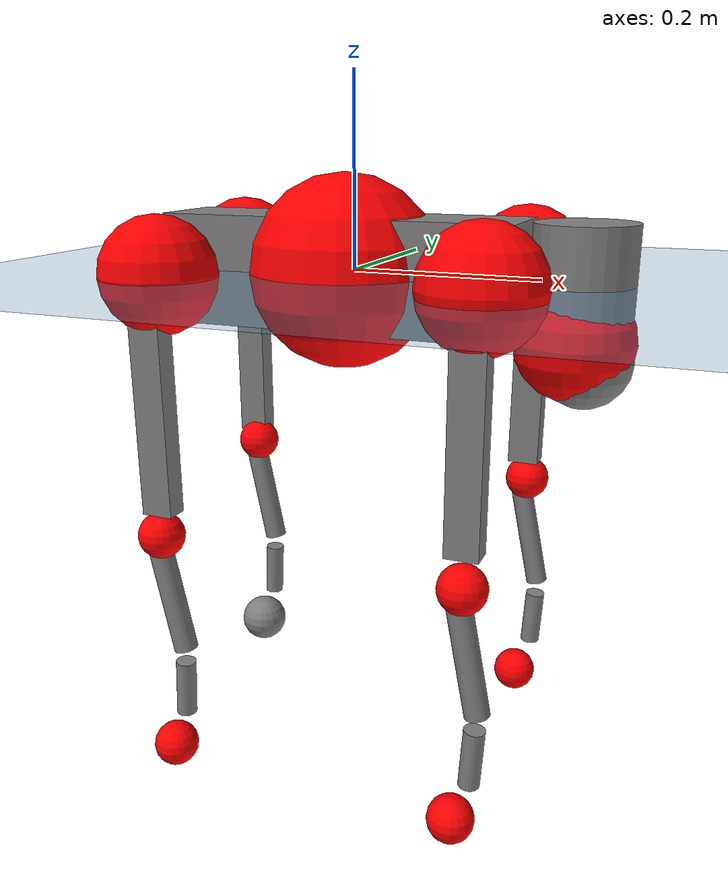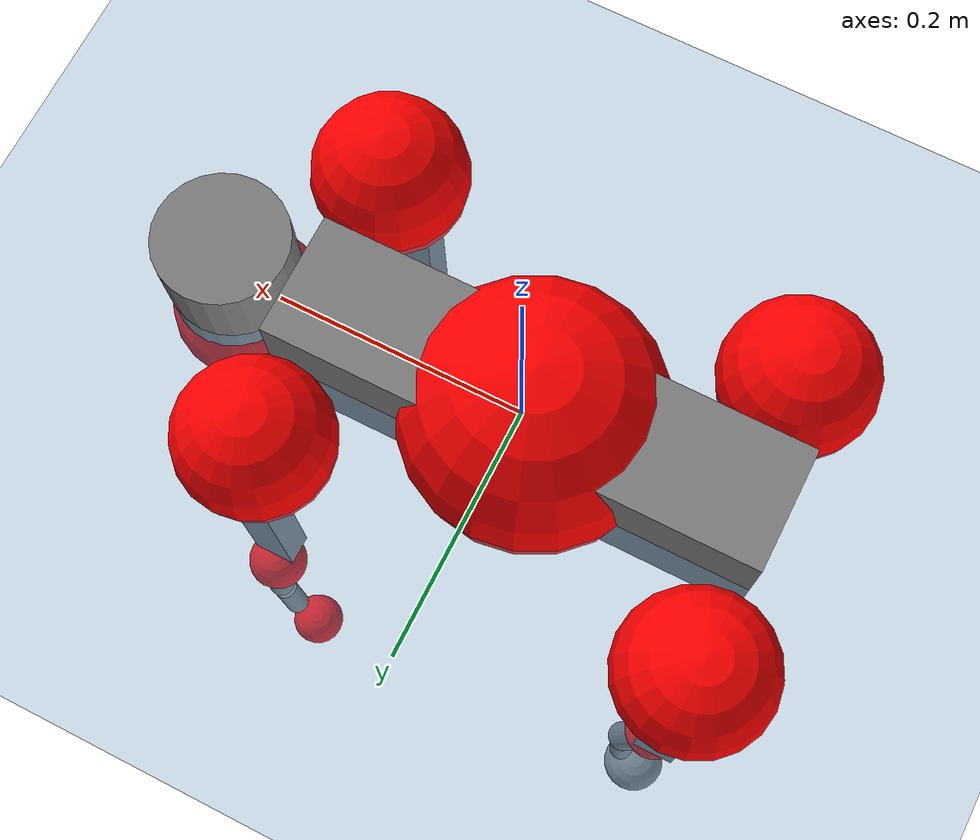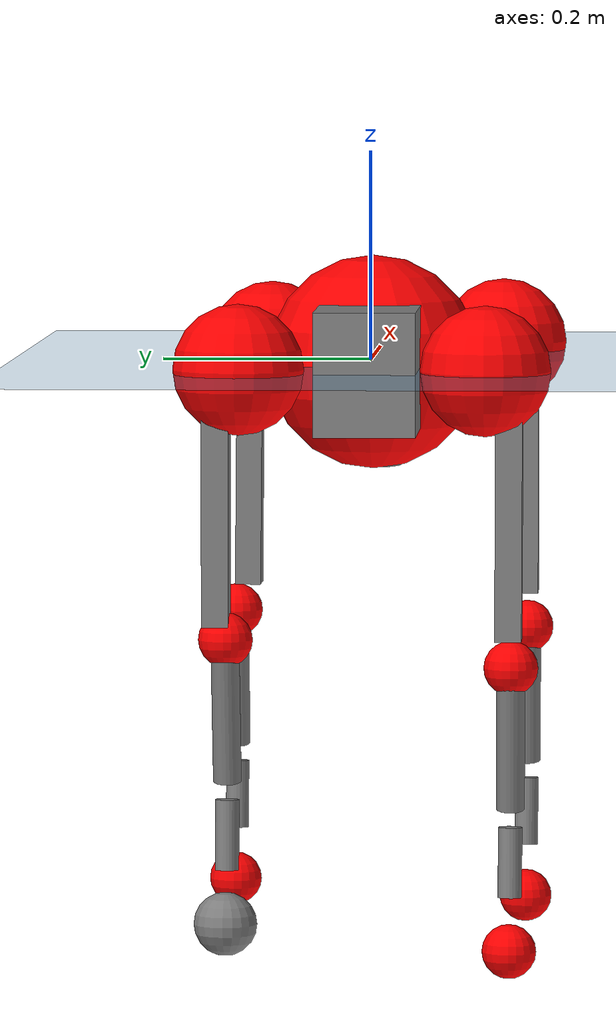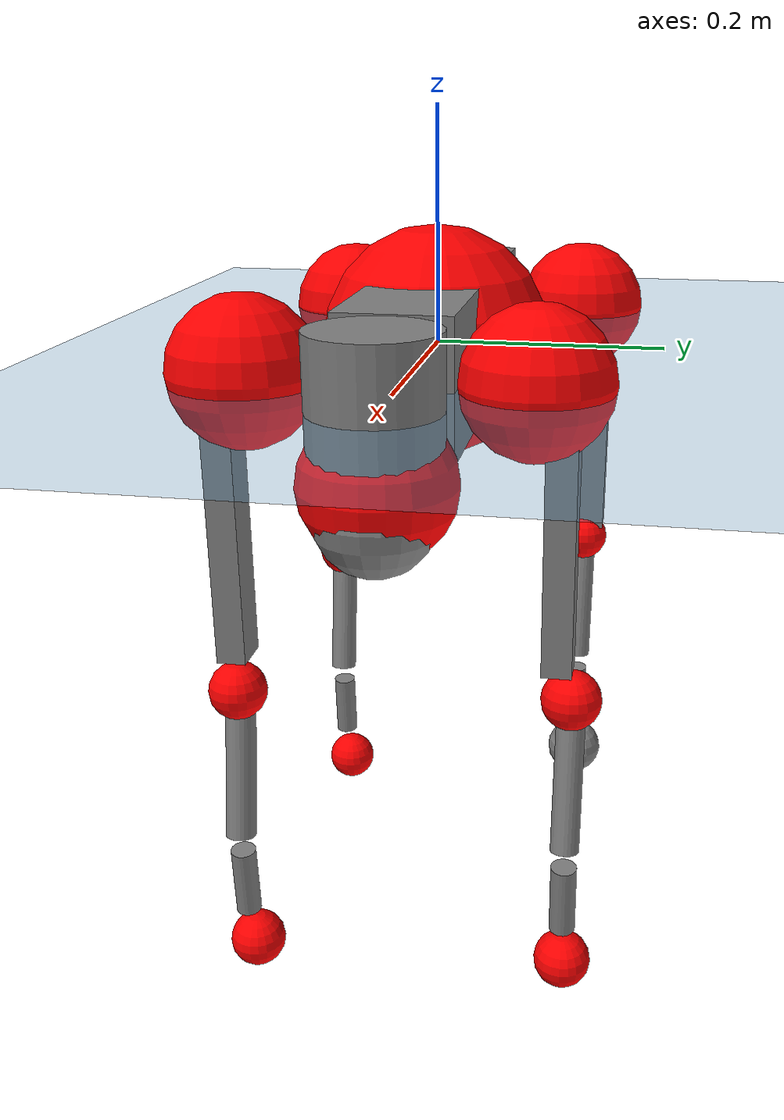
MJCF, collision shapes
<mujoco model="go2">
  <compiler angle="radian" assetdir="assets" balanceinertia="true" inertiafromgeom="false"/>

  <option timestep="0.005" density="1.2" viscosity="2e-05"/>

  <size nkey="1"/>

  <visual>
    <quality shadowsize="8192"/>
    <map shadowclip="0.5"/>
  </visual>

  <default>
    <default class="/">
      <geom contype="0" conaffinity="0" group="1" solref="-1000 -80"/>
      <site size="0.01 0.005 0.005" group="5"/>
      <general forcelimited="true" biastype="affine" gainprm="20" biasprm="0 -20 -0.5"/>
      <default class="go2">
        <joint armature="0.01" damping="0.01" frictionloss="0.2"/>
        <geom condim="1" margin="0.001"/>
        <default class="visual">
          <geom type="mesh" group="2"/>
        </default>
        <default class="collision">
          <geom group="3"/>
          <default class="foot">
            <geom size="0.022 0 0" condim="6" priority="1" friction="0.8 0.02 0.01" solimp="0.015 1 0.022"/>
          </default>
        </default>
        <default class="reward_collision_sphere">
          <geom group="5" rgba="1 0 0 1"/>
        </default>
      </default>
    </default>
  </default>

  <asset>
    <texture type="skybox" colorspace="auto" name="//unnamed_texture_0" builtin="gradient" rgb1="0.95 0.95 0.95" rgb2="0.95 0.95 0.95" width="100" height="600"/>
    <texture type="2d" colorspace="auto" name="texplane" builtin="checker" rgb1="0.345 0.575 0.748" rgb2="0.345 0.575 0.748" markrgb="1 1 1" width="512" height="512"/>
    <material name="MatPlane" class="/" texture="texplane" texuniform="true" texrepeat="2 2" specular="0.9"/>
    <material name="metal" class="/" rgba="0.9 0.95 0.95 1"/>
    <material name="black" class="/" rgba="0 0 0 1"/>
    <material name="white" class="/"/>
    <material name="gray" class="/" rgba="0.671705 0.692426 0.77427 1"/>
    <mesh name="base_0" class="/" file="base_0.obj"/>
    <mesh name="base_1" class="/" file="base_1.obj"/>
    <mesh name="base_2" class="/" file="base_2.obj"/>
    <mesh name="base_3" class="/" file="base_3.obj"/>
    <mesh name="base_4" class="/" file="base_4.obj"/>
    <mesh name="hip_0" class="/" file="hip_0.obj"/>
    <mesh name="hip_1" class="/" file="hip_1.obj"/>
    <mesh name="thigh_0" class="/" file="thigh_0.obj"/>
    <mesh name="thigh_1" class="/" file="thigh_1.obj"/>
    <mesh name="thigh_mirror_0" class="/" file="thigh_mirror_0.obj"/>
    <mesh name="thigh_mirror_1" class="/" file="thigh_mirror_1.obj"/>
    <mesh name="calf_0" class="/" file="calf_0.obj"/>
    <mesh name="calf_1" class="/" file="calf_1.obj"/>
    <mesh name="calf_mirror_0" class="/" file="calf_mirror_0.obj"/>
    <mesh name="calf_mirror_1" class="/" file="calf_mirror_1.obj"/>
    <mesh name="foot" class="/" file="foot.obj"/>
  </asset>

  <worldbody>
    <geom name="floor" class="/" size="100 100 0.125" type="plane" group="0" material="MatPlane"/>
    <light name="toplight_shadow" class="/" pos="0 0 5" dir="0.0990148 0.0990148 -0.990148" type="directional" ambient="0.04 0.04 0.04" diffuse="0.55 0.55 0.55" specular="0.12 0.12 0.12"/>
    <light name="toplight_fill" class="/" pos="0 0 5" dir="0.0990148 0.0990148 -0.990148" type="directional" castshadow="false" ambient="0.04 0.04 0.04" diffuse="0.3 0.3 0.3" specular="0.08 0.08 0.08"/>
    <body name="trunk" childclass="go2" pos="-0.00966211 -0.00304524 -0.00119879" quat="1 0.000270344 -0.000272259 -0.000383991">
      <inertial pos="0.0180261 -0.00123077 -0.0068603" quat="0.0226723 0.709385 0.00165117 0.704455" mass="7.53359" diaginertia="0.0443503 0.057228 0.0759016"/>
      <joint name="//unnamed_joint_0" type="free" armature="0" damping="0" frictionloss="0"/>
      <geom name="//unnamed_geom_1" class="visual" material="black" mesh="base_0"/>
      <geom name="//unnamed_geom_2" class="visual" material="black" mesh="base_1"/>
      <geom name="//unnamed_geom_3" class="visual" material="black" mesh="base_2"/>
      <geom name="//unnamed_geom_4" class="visual" material="white" mesh="base_3"/>
      <geom name="//unnamed_geom_5" class="visual" material="gray" mesh="base_4"/>
      <geom name="trunk_1" class="collision" size="0.192715 0.0478969 0.0583984" type="box"/>
      <geom name="trunk_2" class="collision" size="0.0512267 0.046104" pos="0.250899 0 0.0126039" type="cylinder"/>
      <geom name="trunk_3" class="collision" size="0.0481531" pos="0.257942 0 -0.0756233"/>
      <geom name="//unnamed_geom_9" class="reward_collision_sphere" size="0.102453"/>
      <geom name="//unnamed_geom_10" class="reward_collision_sphere" size="0.061472" pos="0.246497 0 -0.0567175"/>
      <site name="imu" pos="-0.0300992 -0.0017514 0.109154" size="0.0102453"/>
      <camera name="track" pos="0 -1.86573 0" quat="0.707107 0.707107 0 0" mode="trackcom"/>
      <camera name="ego_camera" pos="0.274668 0 0.0567175" quat="-0.5 -0.5 0.5 0.5"/>
      <body name="FL_hip" pos="0.171715 0.0429127 0.00542384" quat="0.99999 0.00327976 0.00286428 -0.000709264">
        <inertial pos="0.00582785 0.00507724 -0.0021026" quat="0.499053 0.502078 0.500327 0.498535" mass="0.72153" diaginertia="0.000461914 0.000449545 0.00148651"/>
        <joint name="FL_hip_joint" pos="0 0 0" axis="0.998039 0.0130852 0.0612045" stiffness="0.0499938" range="-1.06919 1.04525" armature="0.0156456" damping="0.00597191" frictionloss="0.161218"/>
        <geom name="//unnamed_geom_11" class="visual" material="metal" mesh="hip_0"/>
        <geom name="//unnamed_geom_12" class="visual" material="gray" mesh="hip_1"/>
        <geom name="//unnamed_geom_13" class="collision" size="0.0471285 0.0204907" pos="0 0.0746291 0" quat="0.707107 0.707107 0 0" type="cylinder"/>
        <geom name="//unnamed_geom_14" class="reward_collision_sphere" size="0.061472" pos="0 0.0653005 0"/>
        <body name="FL_thigh" pos="0.00618089 0.0870289 0.00494238" quat="0.999998 0.000857148 0.000681919 -0.00145881">
          <inertial pos="-0.00463382 -0.0204693 -0.0295317" quat="0.833042 0.0710839 -0.00600417 0.548592" mass="1.29929" diaginertia="0.00330617 0.00426795 0.00282176"/>
          <joint name="FL_thigh_joint" pos="0 0 0" axis="-0.000607533 0.999691 0.0248457" stiffness="0.0299636" range="-1.64009 3.49016" armature="0.00543522" damping="0.0318756" frictionloss="0.259191"/>
          <geom name="//unnamed_geom_15" class="visual" material="metal" mesh="thigh_0"/>
          <geom name="//unnamed_geom_16" class="visual" material="gray" mesh="thigh_1"/>
          <geom name="//unnamed_geom_17" class="collision" size="0.109113 0.0125505 0.0174171" pos="0 0 -0.134231" quat="0.707107 0 0.707107 0" type="box"/>
          <body name="FL_calf" pos="0.00181719 0.0120073 -0.269991" quat="0.999994 -0.0021109 -0.00202657 0.00190865">
            <inertial pos="0.00138117 0.000377458 -0.181423" quat="0.724388 -0.0404058 -0.0284904 0.687617" mass="0.224129" diaginertia="0.000802009 0.000975442 0.00017438"/>
            <joint name="FL_calf_joint" pos="0 0 0" axis="0.0130887 0.999913 0.00133317" stiffness="0.000818161" range="-2.709 -0.839075" armature="0.0105481" damping="0.0404638" frictionloss="0.214183"/>
            <geom name="//unnamed_geom_18" class="visual" material="gray" mesh="calf_0"/>
            <geom name="//unnamed_geom_19" class="visual" material="black" mesh="calf_1"/>
            <geom name="FL_calf0" class="collision" size="0.0122944 0.061472" pos="0.00704277 0 -0.0756233" quat="0.994493 0 -0.104807 0" type="cylinder"/>
            <geom name="//unnamed_geom_21" class="collision" size="0.0112699 0.0332973" pos="0.0176069 0 -0.186537" quat="0.999688 0 0.0249974 0" type="cylinder"/>
            <geom name="//unnamed_geom_22" class="visual" pos="0 0 -0.268463" quat="1 0 0 0" material="black" mesh="foot"/>
            <geom name="FL_foot" class="foot" size="0.016672" pos="-0.00176069 0 -0.268463"/>
            <geom name="//unnamed_geom_24" class="reward_collision_sphere" size="0.0256133"/>
            <geom name="//unnamed_geom_25" class="reward_collision_sphere" size="0.0256133" pos="-0.00176069 0 -0.268463"/>
            <site name="FL_foot" class="foot" pos="-0.00176069 0 -0.268463" size="0.0102453"/>
          </body>
        </body>
      </body>
      <body name="FR_hip" pos="0.182041 -0.0547791 0.00853689" quat="1 -0.000245477 -0.000457637 -0.000359738">
        <inertial pos="-0.016175 -0.00332214 0.0101379" quat="0.484048 0.505681 0.522285 0.487036" mass="0.631893" diaginertia="0.000397012 0.000392491 0.00132039"/>
        <joint name="FR_hip_joint" pos="0 0 0" axis="0.998869 -0.0378807 -0.0287509" stiffness="0.00508456" range="-0.839021 1.05711" armature="0.011096" damping="0.00687136" frictionloss="0.29423"/>
        <geom name="//unnamed_geom_26" class="visual" pos="0 -2.85326e-09 -1.22382e-07" quat="4.63268e-05 1 0 0" material="metal" mesh="hip_0"/>
        <geom name="//unnamed_geom_27" class="visual" pos="0 -4.62547e-09 3.02698e-07" quat="4.63268e-05 1 0 0" material="gray" mesh="hip_1"/>
        <geom name="//unnamed_geom_28" class="collision" size="0.0471285 0.0204907" pos="0 -0.0746291 0" quat="0.707107 0.707107 0 0" type="cylinder"/>
        <geom name="//unnamed_geom_29" class="reward_collision_sphere" size="0.061472" pos="0 -0.0653005 0"/>
        <body name="FR_thigh" pos="-0.0012061 -0.0872279 -0.00544264" quat="1 8.93404e-05 1.24573e-05 -0.000107808">
          <inertial pos="0.00127013 0.00823263 -0.042712" quat="0.551059 -0.0216533 0.0839588 0.829949" mass="1.20253" diaginertia="0.00309737 0.00401049 0.00273256"/>
          <joint name="FR_thigh_joint" pos="0 0 0" axis="-0.0140443 -0.999274 0.035408" range="-3.50119 1.48221" armature="0.0111586" damping="0.0428311" frictionloss="0.200816"/>
          <geom name="//unnamed_geom_30" class="visual" material="metal" mesh="thigh_mirror_0"/>
          <geom name="//unnamed_geom_31" class="visual" material="gray" mesh="thigh_mirror_1"/>
          <geom name="//unnamed_geom_32" class="collision" size="0.109113 0.0125505 0.0174171" pos="0 0 -0.134231" quat="0.707107 0 0.707107 0" type="box"/>
          <body name="FR_calf" pos="-6.77043e-05 -0.00192554 -0.277313" quat="0.999983 0.00187468 0.005315 -0.00118563">
            <inertial pos="-0.00715633 0.00680606 -0.186944" quat="0.703377 -0.00336768 0.00137375 0.710807" mass="0.287465" diaginertia="0.000741849 0.000914877 0.000144361"/>
            <joint name="FR_calf_joint" pos="0 0 0" axis="-0.0114182 -0.999935 0.000544163" range="1.05207 2.69788" armature="0.0104263" damping="0" frictionloss="0.10829"/>
            <geom name="//unnamed_geom_33" class="visual" material="gray" mesh="calf_mirror_0"/>
            <geom name="//unnamed_geom_34" class="visual" material="black" mesh="calf_mirror_1"/>
            <geom name="FR_calf0" class="collision" size="0.0133189 0.061472" pos="0.00880347 0 -0.0756233" quat="0.995004 0 -0.0998334 0" type="cylinder"/>
            <geom name="//unnamed_geom_36" class="collision" size="0.0112699 0.0332973" pos="0.0176069 0 -0.186537" quat="0.999688 0 0.0249974 0" type="cylinder"/>
            <geom name="//unnamed_geom_37" class="visual" pos="0 0 -0.268463" quat="1 0 0 0" material="black" mesh="foot"/>
            <geom name="FR_foot" class="foot" size="0.0242544" pos="-0.00176069 0 -0.268463"/>
            <geom name="//unnamed_geom_39" class="reward_collision_sphere" size="0.0256133"/>
            <geom name="//unnamed_geom_40" class="reward_collision_sphere" size="0.0256133" pos="-0.00176069 0 -0.268463"/>
            <site name="FR_foot" class="foot" pos="-0.00176069 0 -0.268463" size="0.0102453"/>
          </body>
        </body>
      </body>
      <body name="RL_hip" pos="-0.183223 0.0526403 0.00429841" quat="0.999999 0.000501577 0.000896272 0.000354301">
        <inertial pos="-0.00604208 0.0141548 0.00156041" quat="0.473833 0.508858 0.527146 0.488532" mass="0.755816" diaginertia="0.000468443 0.000416654 0.0016727"/>
        <joint name="RL_hip_joint" pos="0 0 0" axis="-0.999831 0.0138622 0.0120674" stiffness="0.00128058" range="-1.18301 0.988693" armature="0.0103951" damping="0.00922234" frictionloss="0.230143"/>
        <geom name="//unnamed_geom_41" class="visual" pos="3.31077e-09 0 6.48986e-07" quat="4.63268e-05 0 1 0" material="metal" mesh="hip_0"/>
        <geom name="//unnamed_geom_42" class="visual" pos="5.36715e-09 0 5.75559e-07" quat="4.63268e-05 0 1 0" material="gray" mesh="hip_1"/>
        <geom name="//unnamed_geom_43" class="collision" size="0.0471285 0.0204907" pos="0 0.0746291 0" quat="0.707107 0.707107 0 0" type="cylinder"/>
        <geom name="//unnamed_geom_44" class="reward_collision_sphere" size="0.061472" pos="0 0.0653005 0"/>
        <body name="RL_thigh" pos="-0.00498273 0.0860111 0.00302284" quat="0.999999 -0.000424437 -0.000120809 -0.00132311">
          <inertial pos="-0.00401478 -0.0319543 -0.0397309" quat="0.836466 0.0929533 -0.0547447 0.537297" mass="1.11864" diaginertia="0.00310024 0.00382105 0.00292891"/>
          <joint name="RL_thigh_joint" pos="0 0 0" axis="-0.0486352 0.998723 0.0136684" stiffness="0.0363621" range="-0.658848 4.41893" armature="0.00509848" damping="0" frictionloss="0.114645"/>
          <geom name="//unnamed_geom_45" class="visual" material="metal" mesh="thigh_0"/>
          <geom name="//unnamed_geom_46" class="visual" material="gray" mesh="thigh_1"/>
          <geom name="//unnamed_geom_47" class="collision" size="0.109113 0.0125505 0.0174171" pos="0 0 -0.134231" quat="0.707107 0 0.707107 0" type="box"/>
          <body name="RL_calf" pos="0.00607029 -0.00847265 -0.256659" quat="0.999982 0.000105379 0.000728878 -0.00595697">
            <inertial pos="0.00639573 -0.00112114 -0.191073" quat="0.69381 0.00845155 -0.00402952 0.720097" mass="0.297194" diaginertia="0.000785155 0.00110207 0.000175349"/>
            <joint name="RL_calf_joint" pos="0 0 0" axis="-0.0143394 0.999895 0.00194835" stiffness="0.0198026" range="-2.7457 -0.715545" armature="0.00968619" damping="0.0146738" frictionloss="0.2862"/>
            <geom name="//unnamed_geom_48" class="visual" material="gray" mesh="calf_0"/>
            <geom name="//unnamed_geom_49" class="visual" material="black" mesh="calf_1"/>
            <geom name="RL_calf0" class="collision" size="0.0133189 0.061472" pos="0.00880347 0 -0.0756233" quat="0.995004 0 -0.0998334 0" type="cylinder"/>
            <geom name="//unnamed_geom_51" class="collision" size="0.0112699 0.0332973" pos="0.0176069 0 -0.186537" quat="0.999688 0 0.0249974 0" type="cylinder"/>
            <geom name="//unnamed_geom_52" class="visual" pos="0 0 -0.268463" quat="1 0 0 0" material="black" mesh="foot"/>
            <geom name="RL_foot" class="foot" size="0.029857" pos="-0.00176069 0 -0.268463"/>
            <geom name="//unnamed_geom_54" class="reward_collision_sphere" size="0.0256133"/>
            <geom name="//unnamed_geom_55" class="reward_collision_sphere" size="0.0256133" pos="-0.00176069 0 -0.268463"/>
            <site name="RL_foot" class="foot" pos="-0.00176069 0 -0.268463" size="0.0102453"/>
          </body>
        </body>
      </body>
      <body name="RR_hip" pos="-0.159351 -0.0467715 0.00210516" quat="0.999999 2.96401e-05 -0.00118423 0.000327861">
        <inertial pos="-0.00244622 -0.00653905 0.00150037" quat="0.474308 0.479842 0.491362 0.550769" mass="0.728064" diaginertia="0.000437723 0.000389229 0.00141832"/>
        <joint name="RR_hip_joint" pos="0 0 0" axis="-0.998376 -0.0569679 -0.000113216" range="-1.04409 1.00494" armature="0.0119005" damping="0" frictionloss="0.220603"/>
        <geom name="//unnamed_geom_56" class="visual" pos="-3.30895e-09 -2.85326e-09 7.71369e-07" quat="2.14617e-09 4.63268e-05 4.63268e-05 -1" material="metal" mesh="hip_0"/>
        <geom name="//unnamed_geom_57" class="visual" pos="-5.37165e-09 -4.62547e-09 2.72861e-07" quat="2.14617e-09 4.63268e-05 4.63268e-05 -1" material="gray" mesh="hip_1"/>
        <geom name="//unnamed_geom_58" class="collision" size="0.0471285 0.0204907" pos="0 -0.0746291 0" quat="0.707107 0.707107 0 0" type="cylinder"/>
        <geom name="//unnamed_geom_59" class="reward_collision_sphere" size="0.061472" pos="0 -0.0653005 0"/>
        <body name="RR_thigh" pos="-0.000124959 -0.0878557 -0.00975339" quat="0.999999 0.000938823 0.00104711 -2.24176e-05">
          <inertial pos="-0.00450901 0.01945 -0.0431153" quat="0.513578 0.0206455 0.0834947 0.853721" mass="1.2806" diaginertia="0.00314648 0.00375397 0.00241161"/>
          <joint name="RR_thigh_joint" pos="0 0 0" axis="-0.00526766 -0.999984 0.00216403" stiffness="0.035815" range="-4.51245 0.471435" armature="0.00619112" damping="0.0522212" frictionloss="0.249981"/>
          <geom name="//unnamed_geom_60" class="visual" material="metal" mesh="thigh_mirror_0"/>
          <geom name="//unnamed_geom_61" class="visual" material="gray" mesh="thigh_mirror_1"/>
          <geom name="//unnamed_geom_62" class="collision" size="0.109113 0.0125505 0.0174171" pos="0 0 -0.134231" quat="0.707107 0 0.707107 0" type="box"/>
          <body name="RR_calf" pos="-0.00222702 -0.00266094 -0.269103" quat="0.999999 0.00109229 -4.46755e-05 0.000240799">
            <inertial pos="0.0150346 0.0121377 -0.18897" quat="0.699645 -0.00777399 0.00364021 0.714439" mass="0.228363" diaginertia="0.000842201 0.000905756 0.000168614"/>
            <joint name="RR_calf_joint" pos="0 0 0" axis="-0.016175 -0.999865 0.00301974" range="0.890432 2.5077" armature="0.0102574" damping="0" frictionloss="0.0922875"/>
            <geom name="//unnamed_geom_63" class="visual" material="gray" mesh="calf_mirror_0"/>
            <geom name="//unnamed_geom_64" class="visual" material="black" mesh="calf_mirror_1"/>
            <geom name="RR_calf0" class="collision" size="0.0133189 0.061472" pos="0.00880347 0 -0.0756233" quat="0.995004 0 -0.0998334 0" type="cylinder"/>
            <geom name="//unnamed_geom_66" class="collision" size="0.0112699 0.0332973" pos="0.0176069 0 -0.186537" quat="0.999688 0 0.0249974 0" type="cylinder"/>
            <geom name="//unnamed_geom_67" class="visual" pos="0 0 -0.268463" quat="1 0 0 0" material="black" mesh="foot"/>
            <geom name="RR_foot" class="foot" size="0.0136365" pos="-0.00176069 0 -0.268463"/>
            <geom name="//unnamed_geom_69" class="reward_collision_sphere" size="0.0256133"/>
            <geom name="//unnamed_geom_70" class="reward_collision_sphere" size="0.0256133" pos="-0.00176069 0 -0.268463"/>
            <site name="RR_foot" class="foot" pos="-0.00176069 0 -0.268463" size="0.0102453"/>
          </body>
        </body>
      </body>
    </body>
  </worldbody>

  <contact>
    <pair class="/" geom1="floor" geom2="FL_foot" name="//unnamed_contact_0"/>
    <pair class="/" geom1="floor" geom2="FR_foot" name="//unnamed_contact_1"/>
    <pair class="/" geom1="floor" geom2="RL_foot" name="//unnamed_contact_2"/>
    <pair class="/" geom1="floor" geom2="RR_foot" name="//unnamed_contact_3"/>
  </contact>

  <actuator>
    <general name="FL_hip" class="/" joint="FL_hip_joint" forcerange="-24.2996 24.2996" gainprm="21.1373" biasprm="0 -21.1373 -0.487217"/>
    <general name="FL_thigh" class="/" joint="FL_thigh_joint" forcerange="-32.2701 32.2701" gainprm="21.1373" biasprm="0 -21.1373 -0.487217"/>
    <general name="FL_calf" class="/" joint="FL_calf_joint" forcerange="-40.4278 40.4278" gainprm="21.1373" biasprm="0 -21.1373 -0.487217"/>
    <general name="FR_hip" class="/" joint="FR_hip_joint" forcerange="-23.8477 23.8477" gainprm="21.1373" biasprm="0 -21.1373 -0.487217"/>
    <general name="FR_thigh" class="/" joint="FR_thigh_joint" forcerange="-24.7406 24.7406" gainprm="21.1373" biasprm="0 -21.1373 -0.487217"/>
    <general name="FR_calf" class="/" joint="FR_calf_joint" forcerange="-36.6374 36.6374" gainprm="21.1373" biasprm="0 -21.1373 -0.487217"/>
    <general name="RL_hip" class="/" joint="RL_hip_joint" forcerange="-24.0175 24.0175" gainprm="21.1373" biasprm="0 -21.1373 -0.487217"/>
    <general name="RL_thigh" class="/" joint="RL_thigh_joint" forcerange="-18.9051 18.9051" gainprm="21.1373" biasprm="0 -21.1373 -0.487217"/>
    <general name="RL_calf" class="/" joint="RL_calf_joint" forcerange="-55.4586 55.4586" gainprm="21.1373" biasprm="0 -21.1373 -0.487217"/>
    <general name="RR_hip" class="/" joint="RR_hip_joint" forcerange="-23.0856 23.0856" gainprm="21.1373" biasprm="0 -21.1373 -0.487217"/>
    <general name="RR_thigh" class="/" joint="RR_thigh_joint" forcerange="-22.4621 22.4621" gainprm="21.1373" biasprm="0 -21.1373 -0.487217"/>
    <general name="RR_calf" class="/" joint="RR_calf_joint" forcerange="-67.5209 67.5209" gainprm="21.1373" biasprm="0 -21.1373 -0.487217"/>
  </actuator>

  <sensor>
    <gyro site="imu" name="imu_angular_velocity"/>
    <velocimeter site="imu" name="imu_linear_velocity"/>
    <framelinvel objtype="site" objname="FL_foot" name="FL_foot_global_linear_velocity"/>
    <framelinvel objtype="site" objname="FR_foot" name="FR_foot_global_linear_velocity"/>
    <framelinvel objtype="site" objname="RL_foot" name="RL_foot_global_linear_velocity"/>
    <framelinvel objtype="site" objname="RR_foot" name="RR_foot_global_linear_velocity"/>
  </sensor>

  <keyframe>
    <key name="home" qpos="0 0 0.325 1 0 0 0 0.1 0.8 -1.5 -0.1 -0.8 1.5 -0.1 0.8 -1.5 0.1 -0.8 1.5"/>
  </keyframe>
</mujoco>
